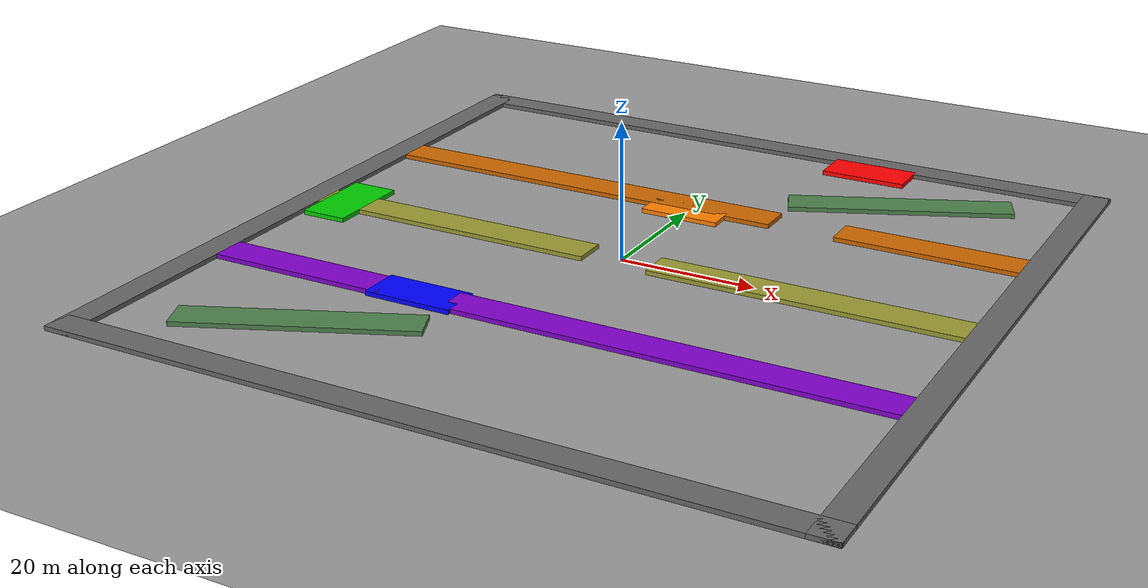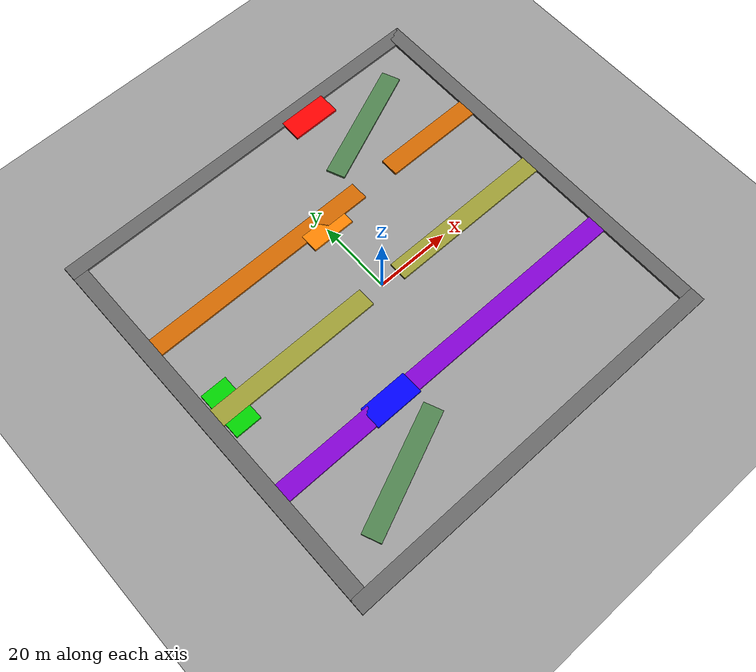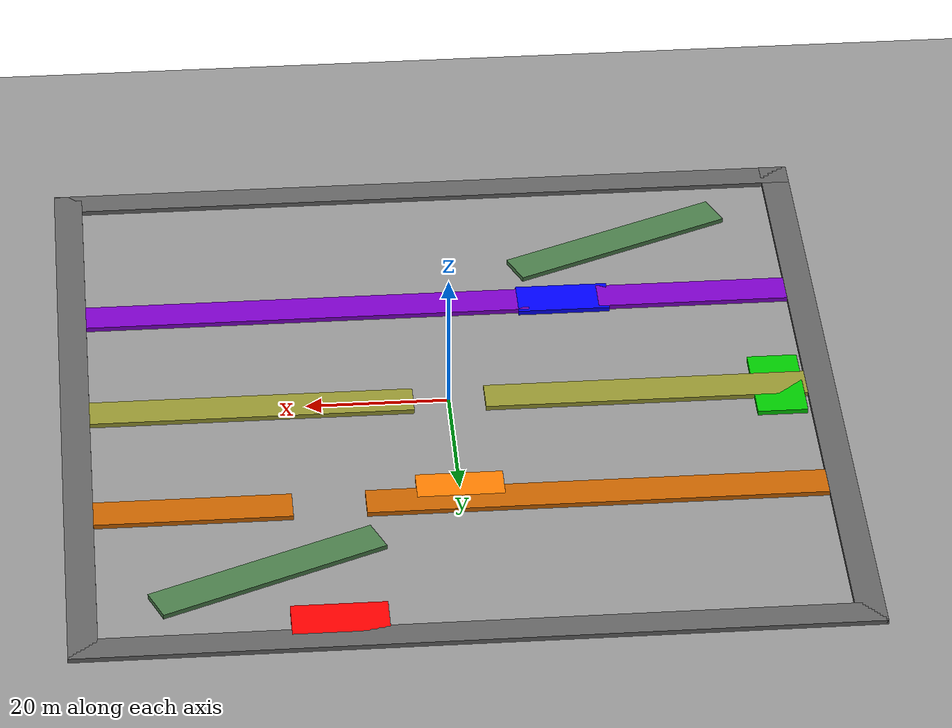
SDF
<sdf version="1.9">
 <world name="default">
  <physics type="ode">
   <max_step_size>0.01</max_step_size>
   <real_time_update_rate>60</real_time_update_rate>
  </physics>
  <model name="ground_plane">
   <static>true</static>
   <link name="link">
    <collision name="collision">
     <geometry><plane><normal>0 0 1</normal><size>100 100</size></plane></geometry>
     <surface><contact><collide_without_contact_bitmask>0x01</collide_without_contact_bitmask></contact></surface>
    </collision>
    <visual name="visual">
     <geometry><plane><normal>0 0 1</normal><size>100 100</size></plane></geometry>
     <material><ambient>0.6 0.6 0.6 1</ambient><diffuse>0.6 0.6 0.6 1</diffuse></material>
    </visual>
   </link>
  </model>
  <model name="wall_north">
   <pose>0.0 52.0 0 0 0 0</pose>
   <link name="wall_link">
    <gravity>false</gravity>
    <visual name="visual">
     <geometry><box><size>108.0 4.0 1.0</size></box></geometry>
     <material><ambient>0.4 0.4 0.4 1</ambient></material>
    </visual>
    <collision name="collision"><geometry><box><size>108.0 4.0 1.0</size></box></geometry></collision>
   </link>
  </model>
  <model name="wall_south">
   <pose>0.0 -52.0 0 0 0 0</pose>
   <link name="wall_link">
    <gravity>false</gravity>
    <visual name="visual">
     <geometry><box><size>108.0 4.0 1.0</size></box></geometry>
     <material><ambient>0.4 0.4 0.4 1</ambient></material>
    </visual>
    <collision name="collision"><geometry><box><size>108.0 4.0 1.0</size></box></geometry></collision>
   </link>
  </model>
  <model name="wall_east">
   <pose>52.0 0.0 0 0 0 0</pose>
   <link name="wall_link">
    <gravity>false</gravity>
    <visual name="visual">
     <geometry><box><size>4.0 108.0 1.0</size></box></geometry>
     <material><ambient>0.4 0.4 0.4 1</ambient></material>
    </visual>
    <collision name="collision"><geometry><box><size>4.0 108.0 1.0</size></box></geometry></collision>
   </link>
  </model>
  <model name="wall_west">
   <pose>-52.0 0.0 0 0 0 0</pose>
   <link name="wall_link">
    <gravity>false</gravity>
    <visual name="visual">
     <geometry><box><size>4.0 108.0 1.0</size></box></geometry>
     <material><ambient>0.4 0.4 0.4 1</ambient></material>
    </visual>
    <collision name="collision"><geometry><box><size>4.0 108.0 1.0</size></box></geometry></collision>
   </link>
  </model>
  <model name="divider_left">
   <pose>-27.5 0.0 0 0 0 0</pose>
   <link name="wall_link">
    <gravity>false</gravity>
    <visual name="visual">
     <geometry><box><size>45.0 5.0 1.0</size></box></geometry>
     <material><ambient>0.6 0.6 0.2 1</ambient></material>
    </visual>
    <collision name="collision"><geometry><box><size>45.0 5.0 1.0</size></box></geometry></collision>
   </link>
  </model>
  <model name="divider_right">
   <pose>27.5 0.0 0 0 0 0</pose>
   <link name="wall_link">
    <gravity>false</gravity>
    <visual name="visual">
     <geometry><box><size>45.0 5.0 1.0</size></box></geometry>
     <material><ambient>0.6 0.6 0.2 1</ambient></material>
    </visual>
    <collision name="collision"><geometry><box><size>45.0 5.0 1.0</size></box></geometry></collision>
   </link>
  </model>
  <model name="gate_a_left">
   <pose>-18.5 23.0 0 0 0 0</pose>
   <link name="wall_link">
    <gravity>false</gravity>
    <visual name="visual">
     <geometry><box><size>63.0 5.0 1.0</size></box></geometry>
     <material><ambient>0.8 0.4 0.0 1</ambient></material>
    </visual>
    <collision name="collision"><geometry><box><size>63.0 5.0 1.0</size></box></geometry></collision>
   </link>
  </model>
  <model name="gate_a_right">
   <pose>36.5 23.0 0 0 0 0</pose>
   <link name="wall_link">
    <gravity>false</gravity>
    <visual name="visual">
     <geometry><box><size>27.0 5.0 1.0</size></box></geometry>
     <material><ambient>0.8 0.4 0.0 1</ambient></material>
    </visual>
    <collision name="collision"><geometry><box><size>27.0 5.0 1.0</size></box></geometry></collision>
   </link>
  </model>
  <model name="gate_c_left">
   <pose>-36.5 -23.0 0 0 0 0</pose>
   <link name="wall_link">
    <gravity>false</gravity>
    <visual name="visual">
     <geometry><box><size>27.0 5.0 1.0</size></box></geometry>
     <material><ambient>0.5 0.0 0.8 1</ambient></material>
    </visual>
    <collision name="collision"><geometry><box><size>27.0 5.0 1.0</size></box></geometry></collision>
   </link>
  </model>
  <model name="gate_c_right">
   <pose>18.5 -23.0 0 0 0 0</pose>
   <link name="wall_link">
    <gravity>false</gravity>
    <visual name="visual">
     <geometry><box><size>63.0 5.0 1.0</size></box></geometry>
     <material><ambient>0.5 0.0 0.8 1</ambient></material>
    </visual>
    <collision name="collision"><geometry><box><size>63.0 5.0 1.0</size></box></geometry></collision>
   </link>
  </model>
  <model name="funnel_upper">
   <pose>27.0 37.0 0 0 0 0.4</pose>
   <link name="wall_link">
    <gravity>false</gravity>
    <visual name="visual">
     <geometry><box><size>33.0 5.0 1.0</size></box></geometry>
     <material><ambient>0.3 0.5 0.3 1</ambient></material>
    </visual>
    <collision name="collision"><geometry><box><size>33.0 5.0 1.0</size></box></geometry></collision>
   </link>
  </model>
  <model name="funnel_lower">
   <pose>-27.0 -37.0 0 0 0 0.4</pose>
   <link name="wall_link">
    <gravity>false</gravity>
    <visual name="visual">
     <geometry><box><size>33.0 5.0 1.0</size></box></geometry>
     <material><ambient>0.3 0.5 0.3 1</ambient></material>
    </visual>
    <collision name="collision"><geometry><box><size>33.0 5.0 1.0</size></box></geometry></collision>
   </link>
  </model>
  <model name="obstacle_alpha">
   <pose>18.0 48.0 0 0 0 0</pose>
   <link name="moving_link">
    <gravity>false</gravity>
    <visual name="visual">
     <geometry><box><size>13.0 6.0 1.0</size></box></geometry>
     <material><ambient>1.0 0.0 0.0 1</ambient></material>
    </visual>
    <collision name="collision"><geometry><box><size>13.0 6.0 1.0</size></box></geometry></collision>
   </link>
   <motion>
    <link_name>moving_link</link_name>
    <direction>0 -1 0</direction>
    <amplitude>25.0</amplitude>
    <speed>8.0</speed>
    <turnaround_threshold>0.5</turnaround_threshold>
   </motion>
  </model>
  <model name="obstacle_beta">
   <pose>0.0 20.0 0 0 0 0</pose>
   <link name="moving_link">
    <gravity>false</gravity>
    <visual name="visual">
     <geometry><box><size>12.0 5.0 1.0</size></box></geometry>
     <material><ambient>1.0 0.5 0.0 1</ambient></material>
    </visual>
    <collision name="collision"><geometry><box><size>12.0 5.0 1.0</size></box></geometry></collision>
   </link>
   <motion>
    <link_name>moving_link</link_name>
    <direction>0 -1 0</direction>
    <amplitude>20.0</amplitude>
    <speed>13.0</speed>
    <turnaround_threshold>0.5</turnaround_threshold>
   </motion>
  </model>
  <model name="obstacle_gamma">
   <pose>-18.0 -23.0 0 0 0 0</pose>
   <link name="moving_link">
    <gravity>false</gravity>
    <visual name="visual">
     <geometry><box><size>13.0 6.0 1.0</size></box></geometry>
     <material><ambient>0.0 0.0 1.0 1</ambient></material>
    </visual>
    <collision name="collision"><geometry><box><size>13.0 6.0 1.0</size></box></geometry></collision>
   </link>
   <motion>
    <link_name>moving_link</link_name>
    <direction>0 -1 0</direction>
    <amplitude>25.0</amplitude>
    <speed>8.0</speed>
    <turnaround_threshold>0.5</turnaround_threshold>
   </motion>
  </model>
  <model name="obstacle_delta">
   <pose>-46.0 0.0 0 0 0 0</pose>
   <link name="moving_link">
    <gravity>false</gravity>
    <visual name="visual">
     <geometry><box><size>7.0 13.0 1.0</size></box></geometry>
     <material><ambient>0.0 0.8 0.0 1</ambient></material>
    </visual>
    <collision name="collision"><geometry><box><size>7.0 13.0 1.0</size></box></geometry></collision>
   </link>
   <motion>
    <link_name>moving_link</link_name>
    <direction>0 1 0</direction>
    <amplitude>27.0</amplitude>
    <speed>8.0</speed>
    <turnaround_threshold>0.5</turnaround_threshold>
   </motion>
  </model>
 </world>
</sdf>
